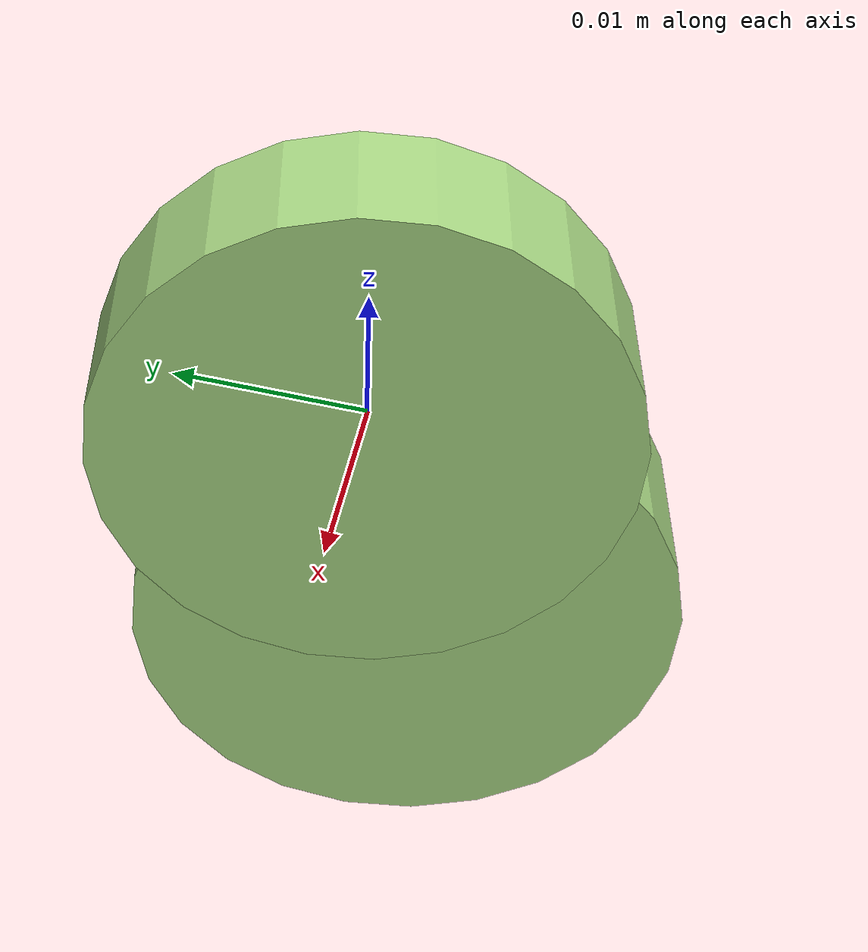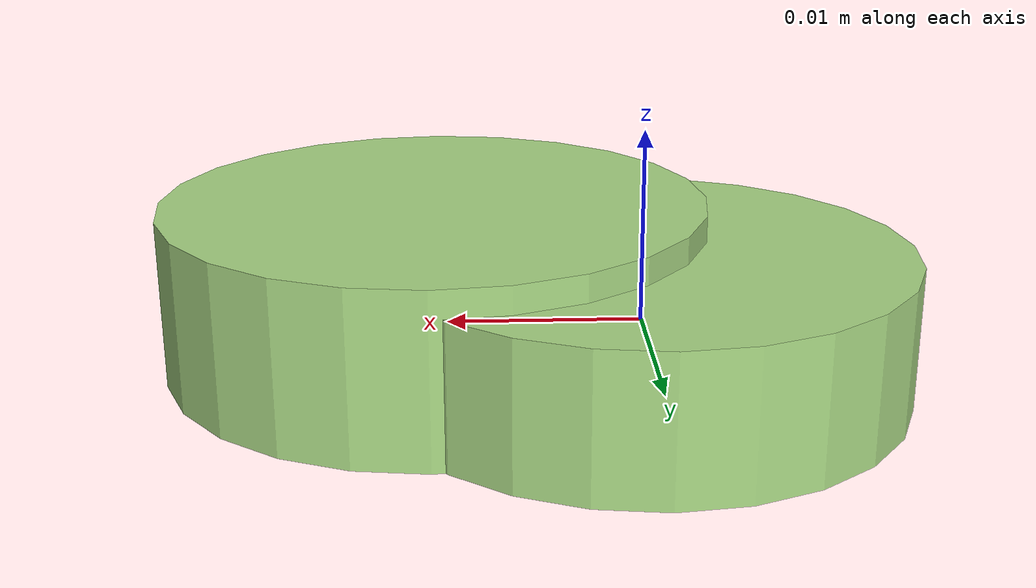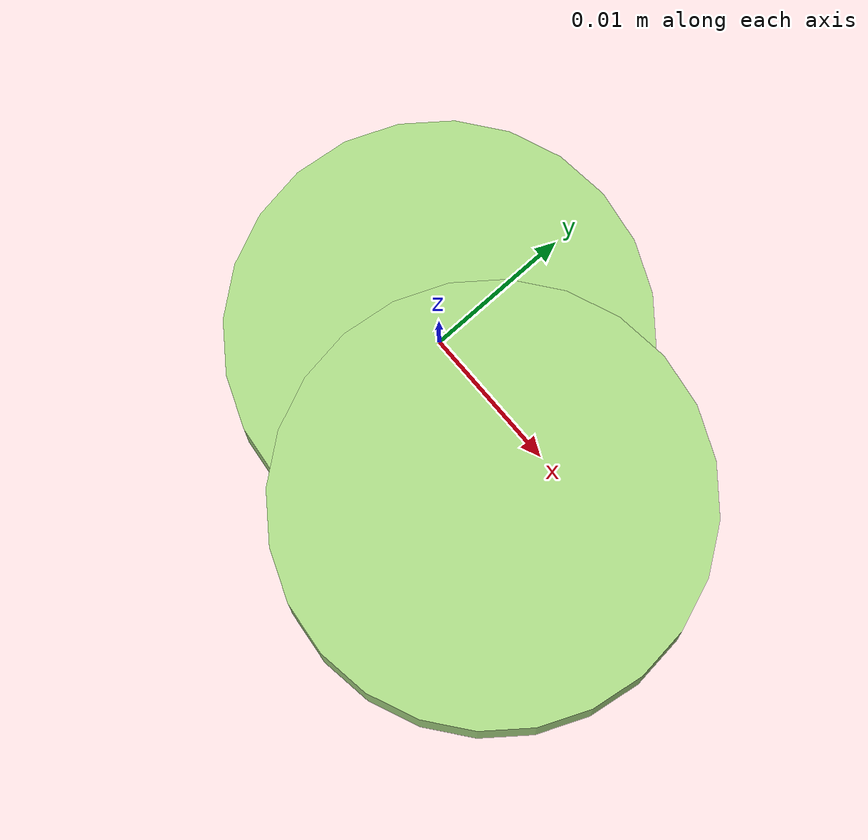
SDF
<?xml version="1.0" ?>
<!-- |    This document was autogenerated by xmacro from data/veggie_template/veggie_base.sdf.xacro  | -->
<!-- |    EDITING THIS FILE BY HAND IS NOT RECOMMENDED                                               | -->
<sdf version="1.8">
	<!-- Parameters -->
	<!-- Base -->
	<!-- Joint 0 -->
	<!-- Link 1 -->
	<!-- Joint 1 -->
	<!-- Link 2 -->
	<!-- Primitives -->
	<!-- All dimensions are half -->
	<!-- Object -->
	<model name="veggie">
		<!-- link0 -->
		<link name="link0">
			<inertial>
				<mass>0.0047081921950349066</mass>
				<inertia>
					<ixx>2.5511801231166033e-07</ixx>
					<ixy>0</ixy>
					<ixz>0</ixz>
					<iyy>2.5511801231166033e-07</iyy>
					<iyz>0</iyz>
					<izz>4.6508169437667146e-07</izz>
				</inertia>
			</inertial>
			<visual name="link0_visual">
				<pose>0 0 0 0 0 0</pose>
				<geometry>
					<cylinder>
						<radius>0.014055701623374538</radius>
						<length>0.007585744941459248</length>
					</cylinder>
				</geometry>
				<material>
					<ambient>0.659 0.839 0.514 1</ambient>
					<diffuse>0.659 0.839 0.514 1</diffuse>
					<specular>0 0 0 0</specular>
					<emissive>0 0 0 1</emissive>
				</material>
			</visual>
			<collision name="link0_collision">
				<pose>0 0 0 0 0 0 </pose>
				<geometry>
					<cylinder>
						<radius>0.014055701623374538</radius>
						<length>0.007585744941459248</length>
					</cylinder>
				</geometry>
			</collision>
		</link>
		<!-- link1 -->
		<joint name="joint0" type="fixed">
			<pose relative_to="link0">0.010682089362367196 -0.0047340356092665375 0.0007152239230461188 0.0 0.0 0.0</pose>
			<parent>link0</parent>
			<child>link1</child>
		</joint>
		<link name="link1">
			<pose relative_to="joint0">0 0 0 0 0 0</pose>
			<inertial>
				<mass>0.006039429637255561</mass>
				<inertia>
					<ixx>3.633041632284054e-07</ixx>
					<ixy>0</ixy>
					<ixz>0</ixz>
					<iyy>3.633041632284054e-07</iyy>
					<iyz>0</iyz>
					<izz>6.450973501097789e-07</izz>
				</inertia>
			</inertial>
			<visual name="link1_visual">
				<pose>0 0 0 0 0 0</pose>
				<geometry>
					<cylinder>
						<radius>0.014616038013695407</radius>
						<length>0.008998823004178548</length>
					</cylinder>
				</geometry>
				<material>
					<ambient>0.659 0.839 0.514 1</ambient>
					<diffuse>0.659 0.839 0.514 1</diffuse>
					<specular>0 0 0 0</specular>
					<emissive>0 0 0 1</emissive>
				</material>
			</visual>
			<collision name="link1_collision">
				<pose>0 0 0 0 0 0 </pose>
				<geometry>
					<cylinder>
						<radius>0.014616038013695407</radius>
						<length>0.008998823004178548</length>
					</cylinder>
				</geometry>
			</collision>
		</link>
		<!-- link2 -->
	</model>
</sdf>
